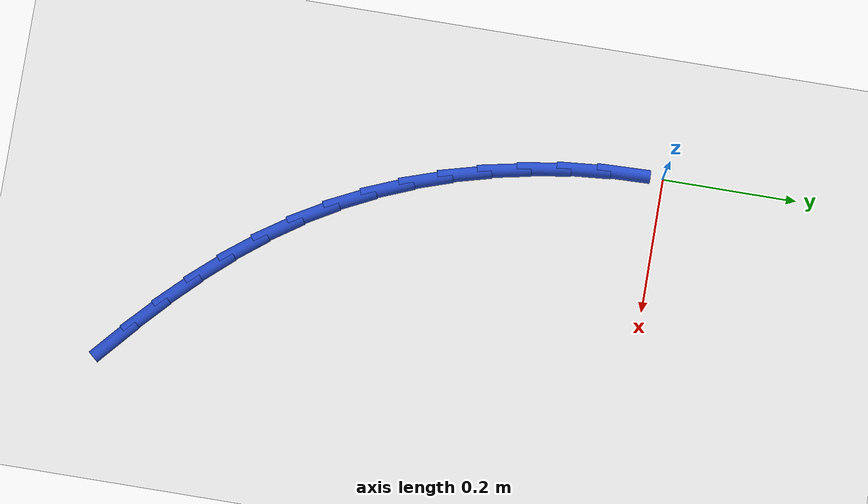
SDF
<sdf version="1.6">
 <world name="default">
  <model name="ground_plane">
   <static>1</static>
   <link name="link">
    <collision name="collision">
     <geometry><plane><normal>0 0 1</normal><size>100 100</size></plane></geometry>
     <surface><friction><ode><mu>100</mu><mu2>50</mu2></ode></friction></surface>
    </collision>
    <visual name="visual">
     <cast_shadows>0</cast_shadows>
     <geometry><plane><normal>0 0 1</normal><size>100 100</size></plane></geometry>
     <material>
      <script><uri>file://media/materials/scripts/gazebo.material</uri><name>Gazebo/WhiteGlow</name></script>
     </material>
    </visual>
   </link>
  </model>
  <model name="line">
   <link name="link_105">
    <pose>0.3670844454994305 -0.7593954858150244 0.01 0 1.57 -0.7244830381171393</pose>
    <collision name="collision">
     <geometry><cylinder><radius>0.01</radius><length>0.08</length></cylinder></geometry>
    </collision>
    <visual name="visual">
     <material>
      <script><name>Gazebo/Blue</name><uri>file://media/materials/scripts/gazebo.material</uri></script>
     </material>
     <geometry><cylinder><radius>0.01</radius><length>0.08</length></cylinder></geometry>
    </visual>
   </link>
   <link name="link_106">
    <pose>0.32332200011018947 -0.7206643707108199 0.01 0 1.57 -0.7601976111817598</pose>
    <collision name="collision">
     <geometry><cylinder><radius>0.01</radius><length>0.08</length></cylinder></geometry>
    </collision>
    <visual name="visual">
     <material>
      <script><name>Gazebo/Blue</name><uri>file://media/materials/scripts/gazebo.material</uri></script>
     </material>
     <geometry><cylinder><radius>0.01</radius><length>0.08</length></cylinder></geometry>
    </visual>
   </link>
   <link name="link_107">
    <pose>0.28104497339106843 -0.6804662044890148 0.01 0 1.57 -0.8030467398140247</pose>
    <collision name="collision">
     <geometry><cylinder><radius>0.01</radius><length>0.08</length></cylinder></geometry>
    </collision>
    <visual name="visual">
     <material>
      <script><name>Gazebo/Blue</name><uri>file://media/materials/scripts/gazebo.material</uri></script>
     </material>
     <geometry><cylinder><radius>0.01</radius><length>0.08</length></cylinder></geometry>
    </visual>
   </link>
   <link name="link_108">
    <pose>0.24066523044762506 -0.638635411971216 0.01 0 1.57 -0.85332809707285</pose>
    <collision name="collision">
     <geometry><cylinder><radius>0.01</radius><length>0.08</length></cylinder></geometry>
    </collision>
    <visual name="visual">
     <material>
      <script><name>Gazebo/Blue</name><uri>file://media/materials/scripts/gazebo.material</uri></script>
     </material>
     <geometry><cylinder><radius>0.01</radius><length>0.08</length></cylinder></geometry>
    </visual>
   </link>
   <link name="link_109">
    <pose>0.20259463638541866 -0.5950064179790319 0.01 0 1.57 -0.9112782423397536</pose>
    <collision name="collision">
     <geometry><cylinder><radius>0.01</radius><length>0.08</length></cylinder></geometry>
    </collision>
    <visual name="visual">
     <material>
      <script><name>Gazebo/Blue</name><uri>file://media/materials/scripts/gazebo.material</uri></script>
     </material>
     <geometry><cylinder><radius>0.01</radius><length>0.08</length></cylinder></geometry>
    </visual>
   </link>
   <link name="link_110">
    <pose>0.16724505631000672 -0.5494136473340692 0.01 0 1.57 -0.9769852175875148</pose>
    <collision name="collision">
     <geometry><cylinder><radius>0.01</radius><length>0.08</length></cylinder></geometry>
    </collision>
    <visual name="visual">
     <material>
      <script><name>Gazebo/Blue</name><uri>file://media/materials/scripts/gazebo.material</uri></script>
     </material>
     <geometry><cylinder><radius>0.01</radius><length>0.08</length></cylinder></geometry>
    </visual>
   </link>
   <link name="link_111">
    <pose>0.1350283553269473 -0.5016915248579352 0.01 0 1.57 -1.0487187927887152</pose>
    <collision name="collision">
     <geometry><cylinder><radius>0.01</radius><length>0.08</length></cylinder></geometry>
    </collision>
    <visual name="visual">
     <material>
      <script><name>Gazebo/Blue</name><uri>file://media/materials/scripts/gazebo.material</uri></script>
     </material>
     <geometry><cylinder><radius>0.01</radius><length>0.08</length></cylinder></geometry>
    </visual>
   </link>
   <link name="link_112">
    <pose>0.10628895743263213 -0.4517380871223791 0.01 0 1.57 -1.119301109415867</pose>
    <collision name="collision">
     <geometry><cylinder><radius>0.01</radius><length>0.08</length></cylinder></geometry>
    </collision>
    <visual name="visual">
     <material>
      <script><name>Gazebo/Blue</name><uri>file://media/materials/scripts/gazebo.material</uri></script>
     </material>
     <geometry><cylinder><radius>0.01</radius><length>0.08</length></cylinder></geometry>
    </visual>
   </link>
   <link name="link_113">
    <pose>0.08107199018937811 -0.399733672847179 0.01 0 1.57 -1.1868701994233075</pose>
    <collision name="collision">
     <geometry><cylinder><radius>0.01</radius><length>0.08</length></cylinder></geometry>
    </collision>
    <visual name="visual">
     <material>
      <script><name>Gazebo/Blue</name><uri>file://media/materials/scripts/gazebo.material</uri></script>
     </material>
     <geometry><cylinder><radius>0.01</radius><length>0.08</length></cylinder></geometry>
    </visual>
   </link>
   <link name="link_114">
    <pose>0.059339583314099345 -0.34593690591481563 0.01 0 1.57 -1.2516143595688303</pose>
    <collision name="collision">
     <geometry><cylinder><radius>0.01</radius><length>0.08</length></cylinder></geometry>
    </collision>
    <visual name="visual">
     <material>
      <script><name>Gazebo/Blue</name><uri>file://media/materials/scripts/gazebo.material</uri></script>
     </material>
     <geometry><cylinder><radius>0.01</radius><length>0.08</length></cylinder></geometry>
    </visual>
   </link>
   <link name="link_115">
    <pose>0.041053863417690156 -0.2906064131374276 0.01 0 1.57 -1.3137915457785416</pose>
    <collision name="collision">
     <geometry><cylinder><radius>0.01</radius><length>0.08</length></cylinder></geometry>
    </collision>
    <visual name="visual">
     <material>
      <script><name>Gazebo/Blue</name><uri>file://media/materials/scripts/gazebo.material</uri></script>
     </material>
     <geometry><cylinder><radius>0.01</radius><length>0.08</length></cylinder></geometry>
    </visual>
   </link>
   <link name="link_116">
    <pose>0.026176957111045493 -0.23400082132715516 0.01 0 1.57 -1.3737086056787713</pose>
    <collision name="collision">
     <geometry><cylinder><radius>0.01</radius><length>0.08</length></cylinder></geometry>
    </collision>
    <visual name="visual">
     <material>
      <script><name>Gazebo/Blue</name><uri>file://media/materials/scripts/gazebo.material</uri></script>
     </material>
     <geometry><cylinder><radius>0.01</radius><length>0.08</length></cylinder></geometry>
    </visual>
   </link>
   <link name="link_117">
    <pose>0.014670991005059631 -0.17637875729613722 0.01 0 1.57 -1.4317052241434947</pose>
    <collision name="collision">
     <geometry><cylinder><radius>0.01</radius><length>0.08</length></cylinder></geometry>
    </collision>
    <visual name="visual">
     <material>
      <script><name>Gazebo/Blue</name><uri>file://media/materials/scripts/gazebo.material</uri></script>
     </material>
     <geometry><cylinder><radius>0.01</radius><length>0.08</length></cylinder></geometry>
    </visual>
   </link>
   <link name="link_118">
    <pose>0.006498091710627079 -0.11799884785651274 0.01 0 1.57 -1.4881423654581372</pose>
    <collision name="collision">
     <geometry><cylinder><radius>0.01</radius><length>0.08</length></cylinder></geometry>
    </collision>
    <visual name="visual">
     <material>
      <script><name>Gazebo/Blue</name><uri>file://media/materials/scripts/gazebo.material</uri></script>
     </material>
     <geometry><cylinder><radius>0.01</radius><length>0.08</length></cylinder></geometry>
    </visual>
   </link>
   <link name="link_119">
    <pose>0.0016203858386423 -0.05911971982042003 0.01 0 1.57 -1.5433946363561315</pose>
    <collision name="collision">
     <geometry><cylinder><radius>0.01</radius><length>0.08</length></cylinder></geometry>
    </collision>
    <visual name="visual">
     <material>
      <script><name>Gazebo/Blue</name><uri>file://media/materials/scripts/gazebo.material</uri></script>
     </material>
     <geometry><cylinder><radius>0.01</radius><length>0.08</length></cylinder></geometry>
    </visual>
   </link>
  </model>
 </world>
</sdf>
